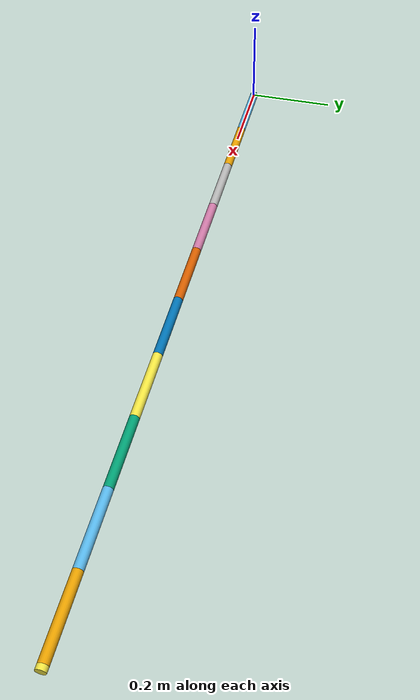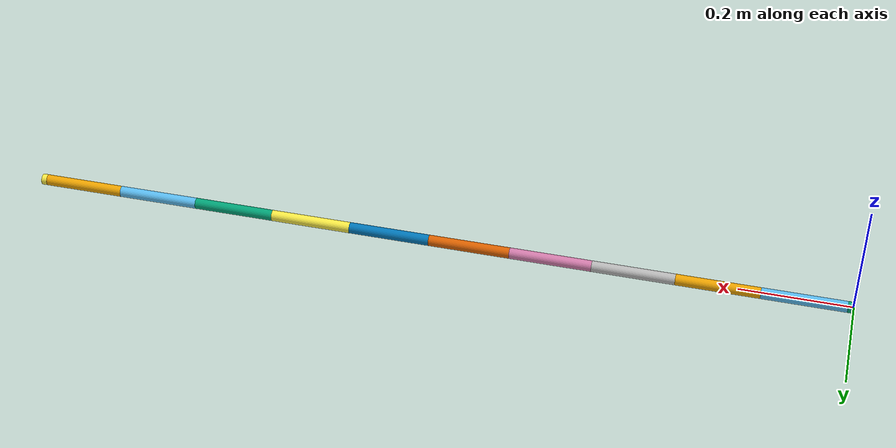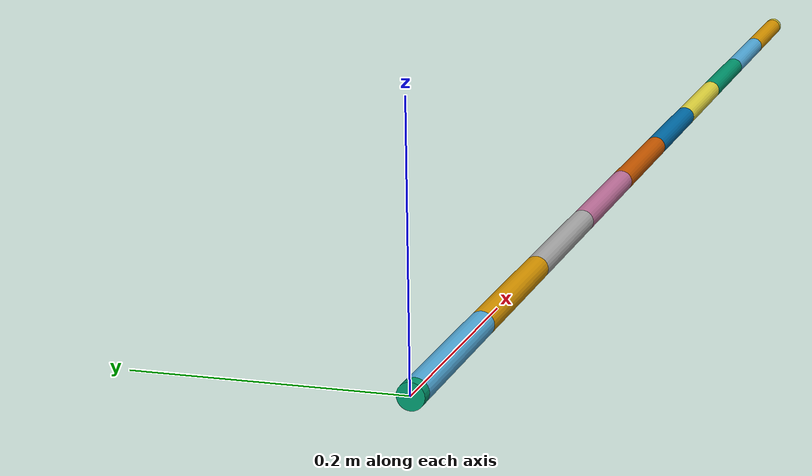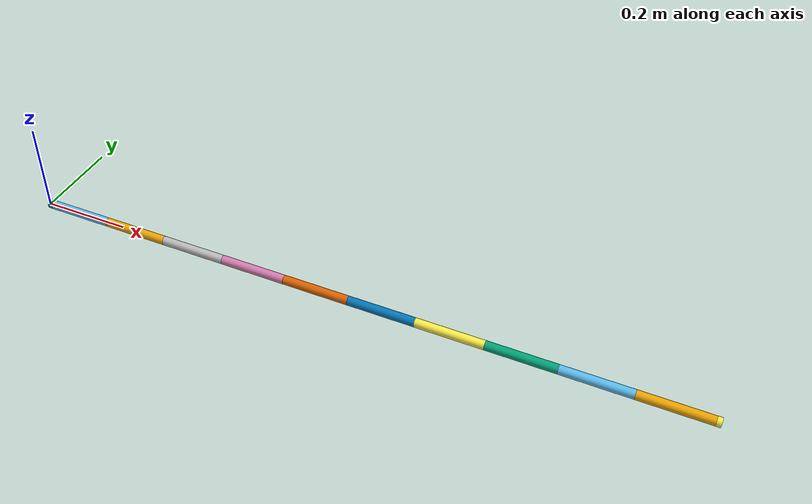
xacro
<?xml version="1.0" ?>
<robot name="tether" xmlns:xacro="http://ros.org/wiki/xacro">
    <!-- Xacro to generate tether SDF -->
    <!-- Note: need to manually find and replace all references to 'continuous'
    with 'ball' in final SDF to get better tether-->

    <!-- Define properties -->
    <xacro:property name="tether_length" value="1.5" />
    <xacro:property name="tether_radius" value="0.01" />
    <xacro:property name="tether_mass" value="0.1" />
    <xacro:property name="num_elements" value="10" />

    <xacro:property name="elem_length_main" value="${tether_length/num_elements}" />
    <xacro:property name="elem_length_ends" value="0.01" />
    <xacro:property name="elem_mass_main" value="${tether_mass/num_elements}" />
    <xacro:property name="elem_mass_ends" value="${elem_mass_main*(elem_length_ends/elem_length_main)}" />

    <!-- Define link macro -->
    <xacro:macro name="tether_element" params="element_num elem_length elem_mass">
        <link name="element_${element_num}">
            <inertial>
                <origin xyz="${elem_length/2} 0 0" rpy="0 ${pi/2} 0" />
                <mass value="${elem_mass}"/>
                <inertia ixx="${1/12*elem_mass*(3*tether_radius**2 + elem_length**2)}" ixy="0" ixz="0" iyy="${1/12*elem_mass*(3*tether_radius**2 + elem_length**2)}" iyz="0" izz="${1/2*elem_mass*(tether_radius**2)}" />
            </inertial>
            <visual>
                <origin xyz="${elem_length/2} 0 0" rpy="0 ${pi/2} 0" />
                <geometry>
                    <cylinder length="${elem_length}" radius="${tether_radius}"/>
                </geometry>
            </visual>
            <collision>
                <origin xyz="${elem_length/2} 0 0" rpy="0 ${pi/2} 0" />
                <geometry>
                    <cylinder length="${elem_length}" radius="${tether_radius}"/>
                </geometry>
            </collision>
        </link>
    </xacro:macro>

    <!-- Recursive loop to generate multiple elements and joints for said elements -->
    <xacro:macro name="generate_tether" params="elem_num">
        <!-- Generate elements and recurse-->
        <xacro:tether_element element_num="${elem_num}" elem_length="${elem_length_main}" elem_mass="${elem_mass_main}" />

        <xacro:if value="${elem_num-1}">
            <xacro:generate_tether elem_num="${elem_num-1}" />
        </xacro:if>

        <!-- Define joints -->
        <xacro:if value="${elem_num-1 > 0}">
            <joint name="joint_${elem_num-1}_to_${elem_num}" type="continuous">
                <axis xyz="0. 1. 1."/>
                <origin xyz="${elem_length_main} 0 0" rpy="0 0 0"/>
                <parent link="element_${elem_num-1}"/>
                <child link="element_${elem_num}"/>
            </joint>

        </xacro:if>

    </xacro:macro>

    <!-- Call recursive loop to generate tether -->
    <xacro:generate_tether elem_num="${num_elements}" />

    <!-- Add start and end elements and joints-->
    <xacro:tether_element element_num="0" elem_length="${elem_length_ends}" elem_mass="${elem_mass_ends}" />
    <xacro:tether_element element_num="${num_elements+1}" elem_length="${elem_length_ends}" elem_mass="${elem_mass_ends}" />

    <joint name="joint_0_to_1" type="continuous">
        <axis xyz="0. 1. 1."/>
        <origin xyz="${elem_length_ends} 0 0" rpy="0 0 0"/>
        <parent link="element_0"/>
        <child link="element_1"/>
    </joint>
    <joint name="joint_${num_elements}_to_${num_elements+1}" type="continuous">
        <axis xyz="0. 1. 1."/>
        <origin xyz="${elem_length_main} 0 0" rpy="0 0 0"/>
        <parent link="element_${num_elements}"/>
        <child link="element_${num_elements+1}"/>
    </joint>

    <!-- Define joints -->
        <!-- Add start element joint-->

</robot>
